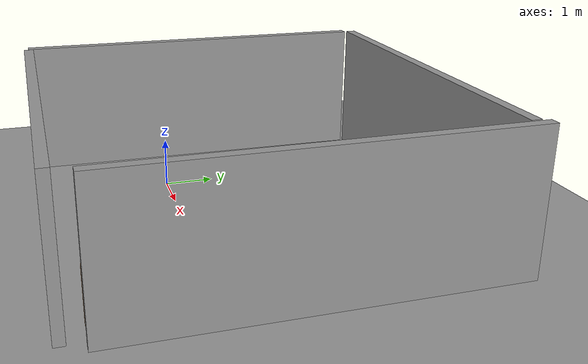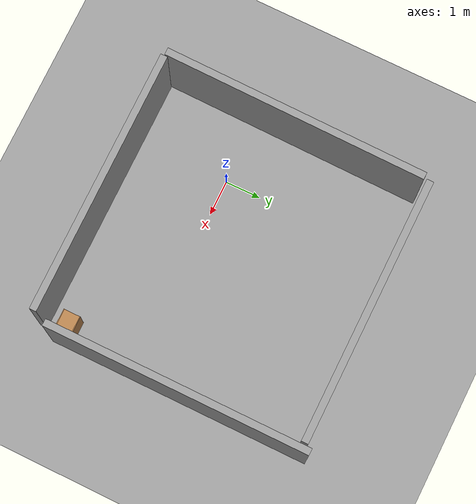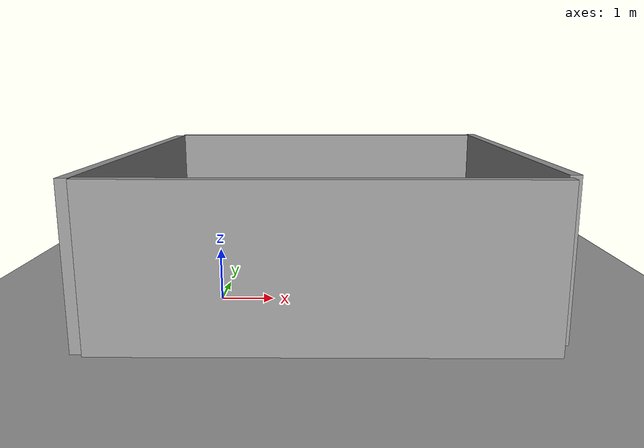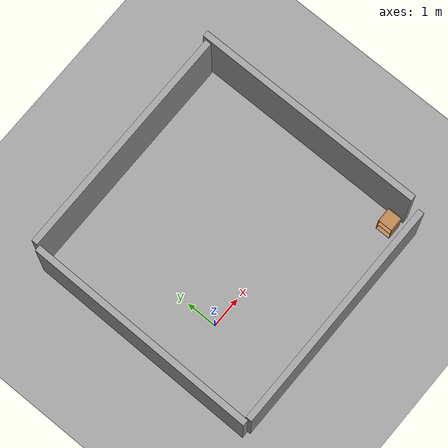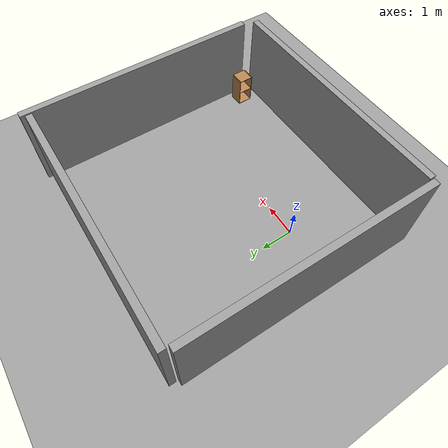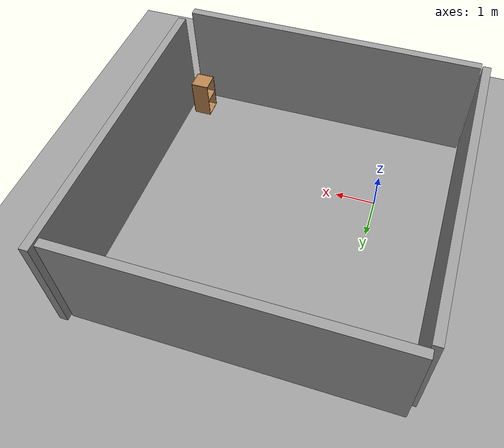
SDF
<sdf version="1.4">
 <world name="default">
  <light name="sun" type="directional">
   <pose>0 0 10 0 -0 0</pose>
   <diffuse>0.8 0.8 0.8 1</diffuse>
   <specular>0.2 0.2 0.2 1</specular>
   <attenuation>
    <range>1000</range>
    <constant>0.9</constant>
    <linear>0.01</linear>
    <quadratic>0.001</quadratic>
   </attenuation>
   <direction>0.5 0.1 -0.9</direction>
  </light>
  <scene><ambient>0.4 0.4 0.4 1</ambient><background>0.7 0.7 0.7 1</background><shadows>1</shadows></scene>
  <physics type="ode">
   <max_step_size>0.01</max_step_size>
   <real_time_factor>1</real_time_factor>
   <real_time_update_rate>100</real_time_update_rate>
   <gravity>0 0 -9.8</gravity>
  </physics>
  <model name="ground_plane_0">
   <static>1</static>
   <link name="link">
    <collision name="collision">
     <geometry><plane><normal>0 0 1</normal><size>100 100</size></plane></geometry>
     <surface><friction><ode><mu>100</mu><mu2>50</mu2></ode></friction></surface>
    </collision>
    <visual name="visual">
     <cast_shadows>0</cast_shadows>
     <geometry><plane><normal>0 0 1</normal><size>100 100</size></plane></geometry>
     <material>
      <script><uri>file://media/materials/scripts/gazebo.material</uri><name>Gazebo/Grey</name></script>
     </material>
    </visual>
    <velocity_decay><linear>0</linear><angular>0</angular></velocity_decay>
   </link>
   <pose>0.497681 0 0 0 -0 0</pose>
  </model>
  <spherical_coordinates>
   <surface_model>EARTH_WGS84</surface_model>
   <latitude_deg>0</latitude_deg>
   <longitude_deg>0</longitude_deg>
   <elevation>0</elevation>
   <heading_deg>0</heading_deg>
  </spherical_coordinates>
  <model name="grey_wall">
   <static>1</static>
   <link name="link">
    <pose>0 0 1.4 0 -0 0</pose>
    <collision name="collision"><geometry><box><size>7.5 0.2 2.8</size></box></geometry></collision>
    <visual name="visual">
     <cast_shadows>0</cast_shadows>
     <geometry><box><size>7.5 0.2 2.8</size></box></geometry>
     <material>
      <script>
       <uri>model://grey_wall/materials/scripts</uri>
       <uri>model://grey_wall/materials/textures</uri>
       <name>vrc/grey_wall</name>
      </script>
     </material>
    </visual>
    <velocity_decay><linear>0</linear><angular>0</angular></velocity_decay>
   </link>
   <pose>2 5 0 0 -0 0</pose>
  </model>
  <model name="grey_wall_0">
   <static>1</static>
   <link name="link">
    <pose>0 0 1.4 0 -0 0</pose>
    <collision name="collision"><geometry><box><size>7.5 0.2 2.8</size></box></geometry></collision>
    <visual name="visual">
     <cast_shadows>0</cast_shadows>
     <geometry><box><size>7.5 0.2 2.8</size></box></geometry>
     <material>
      <script>
       <uri>model://grey_wall/materials/scripts</uri>
       <uri>model://grey_wall/materials/textures</uri>
       <name>vrc/grey_wall</name>
      </script>
     </material>
    </visual>
    <velocity_decay><linear>0</linear><angular>0</angular></velocity_decay>
   </link>
   <pose>2 -2.66114 0 0 -0 0</pose>
  </model>
  <model name="grey_wall_1">
   <static>1</static>
   <link name="link">
    <pose>0 0 1.4 0 -0 0</pose>
    <collision name="collision"><geometry><box><size>7.5 0.2 2.8</size></box></geometry></collision>
    <visual name="visual">
     <cast_shadows>0</cast_shadows>
     <geometry><box><size>7.5 0.2 2.8</size></box></geometry>
     <material>
      <script>
       <uri>model://grey_wall/materials/scripts</uri>
       <uri>model://grey_wall/materials/textures</uri>
       <name>vrc/grey_wall</name>
      </script>
     </material>
    </visual>
    <velocity_decay><linear>0</linear><angular>0</angular></velocity_decay>
   </link>
   <pose>5.8976 1.48479 0 0 0 -1.57033</pose>
  </model>
  <model name="grey_wall_2">
   <static>1</static>
   <link name="link">
    <pose>0 0 1.4 0 -0 0</pose>
    <collision name="collision"><geometry><box><size>7.5 0.2 2.8</size></box></geometry></collision>
    <visual name="visual">
     <cast_shadows>0</cast_shadows>
     <geometry><box><size>7.5 0.2 2.8</size></box></geometry>
     <material>
      <script>
       <uri>model://grey_wall/materials/scripts</uri>
       <uri>model://grey_wall/materials/textures</uri>
       <name>vrc/grey_wall</name>
      </script>
     </material>
    </visual>
    <velocity_decay><linear>0</linear><angular>0</angular></velocity_decay>
   </link>
   <pose>-1.84113 1.08418 0 0 0 -1.58093</pose>
  </model>
  <model name="cabinet">
   <static>1</static>
   <link name="cabinet_bottom_plate">
    <inertial>
     <pose>0 0 -1 0 -0 0</pose>
     <inertia><ixx>2.05</ixx><ixy>0</ixy><ixz>0</ixz><iyy>2.05</iyy><iyz>0</iyz><izz>2.05</izz></inertia>
     <mass>25</mass>
    </inertial>
    <collision name="cabinet_bottom_plate_geom">
     <pose>0 0 0.01 0 -0 0</pose>
     <geometry><box><size>0.45 0.45 0.02</size></box></geometry>
    </collision>
    <visual name="cabinet_bottom_plate_geom_visual">
     <pose>0 0 0.01 0 -0 0</pose>
     <geometry><box><size>0.45 0.45 0.02</size></box></geometry>
     <material>
      <script><uri>file://media/materials/scripts/gazebo.material</uri><name>Gazebo/Wood</name></script>
     </material>
    </visual>
    <collision name="cabinet_bottom_plate_geom_cabinet_back_plate">
     <pose>0.235 0 0.51 0 -0 0</pose>
     <geometry><box><size>0.02 0.45 1.02</size></box></geometry>
    </collision>
    <visual name="cabinet_bottom_plate_geom_cabinet_back_plate_visual">
     <pose>0.235 0 0.51 0 -0 0</pose>
     <geometry><box><size>0.02 0.45 1.02</size></box></geometry>
     <material>
      <script><uri>file://media/materials/scripts/gazebo.material</uri><name>Gazebo/Wood</name></script>
     </material>
    </visual>
    <collision name="cabinet_bottom_plate_geom_cabinet_left_plate">
     <pose>0 0.235 0.51 0 -0 0</pose>
     <geometry><box><size>0.45 0.02 1.02</size></box></geometry>
    </collision>
    <visual name="cabinet_bottom_plate_geom_cabinet_left_plate_visual">
     <pose>0 0.235 0.51 0 -0 0</pose>
     <geometry><box><size>0.45 0.02 1.02</size></box></geometry>
     <material>
      <script><uri>file://media/materials/scripts/gazebo.material</uri><name>Gazebo/Wood</name></script>
     </material>
    </visual>
    <collision name="cabinet_bottom_plate_geom_cabinet_middle_plate">
     <pose>0 0 0.51 0 -0 0</pose>
     <geometry><box><size>0.45 0.45 0.02</size></box></geometry>
    </collision>
    <visual name="cabinet_bottom_plate_geom_cabinet_middle_plate_visual">
     <pose>0 0 0.51 0 -0 0</pose>
     <geometry><box><size>0.45 0.45 0.02</size></box></geometry>
     <material>
      <script><uri>file://media/materials/scripts/gazebo.material</uri><name>Gazebo/Wood</name></script>
     </material>
    </visual>
    <collision name="cabinet_bottom_plate_geom_cabinet_right_plate">
     <pose>0 -0.235 0.51 0 -0 0</pose>
     <geometry><box><size>0.45 0.02 1.02</size></box></geometry>
    </collision>
    <visual name="cabinet_bottom_plate_geom_cabinet_right_plate_visual">
     <pose>0 -0.235 0.51 0 -0 0</pose>
     <geometry><box><size>0.45 0.02 1.02</size></box></geometry>
     <material>
      <script><uri>file://media/materials/scripts/gazebo.material</uri><name>Gazebo/Wood</name></script>
     </material>
    </visual>
    <collision name="cabinet_bottom_plate_geom_cabinet_top_plate">
     <pose>0 0 1.01 0 -0 0</pose>
     <geometry><box><size>0.45 0.45 0.02</size></box></geometry>
    </collision>
    <visual name="cabinet_bottom_plate_geom_cabinet_top_plate_visual">
     <pose>0 0 1.01 0 -0 0</pose>
     <geometry><box><size>0.45 0.45 0.02</size></box></geometry>
     <material>
      <script><uri>file://media/materials/scripts/gazebo.material</uri><name>Gazebo/Wood</name></script>
     </material>
    </visual>
    <velocity_decay><linear>0</linear><angular>0</angular></velocity_decay>
   </link>
   <pose>5.41336 -2 0 0 -0 0</pose>
  </model>
 </world>
</sdf>
